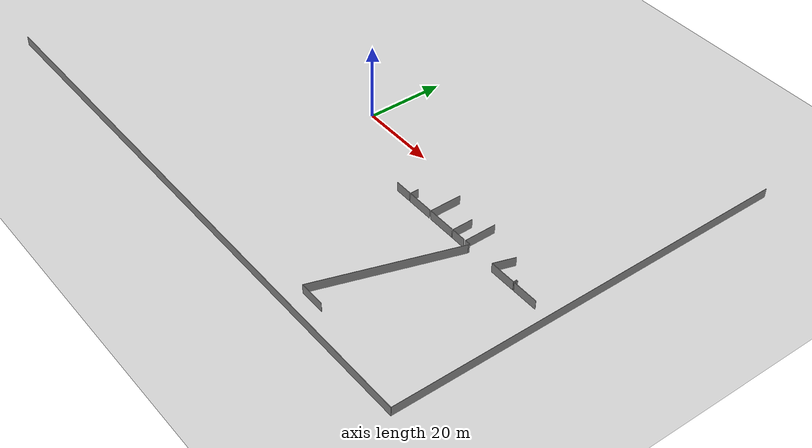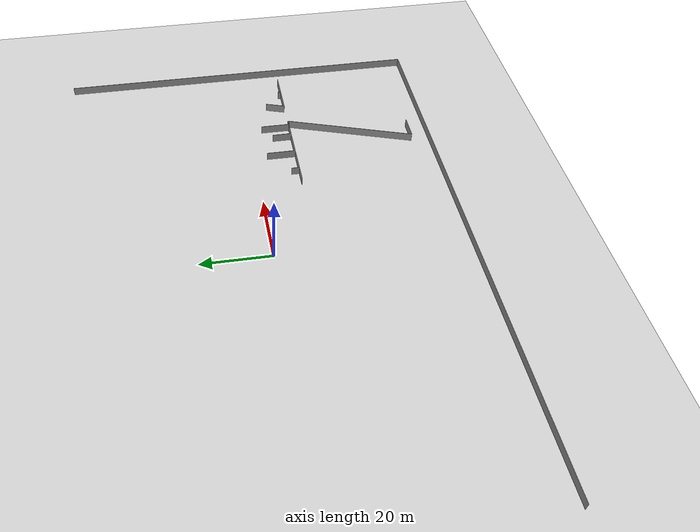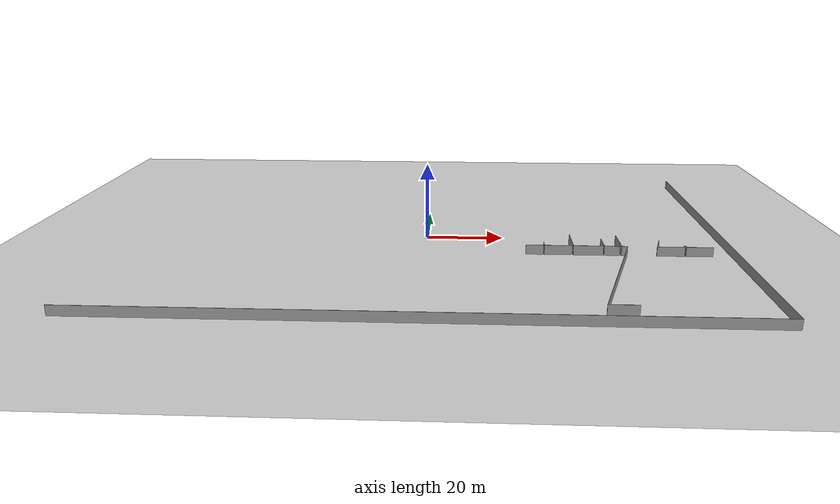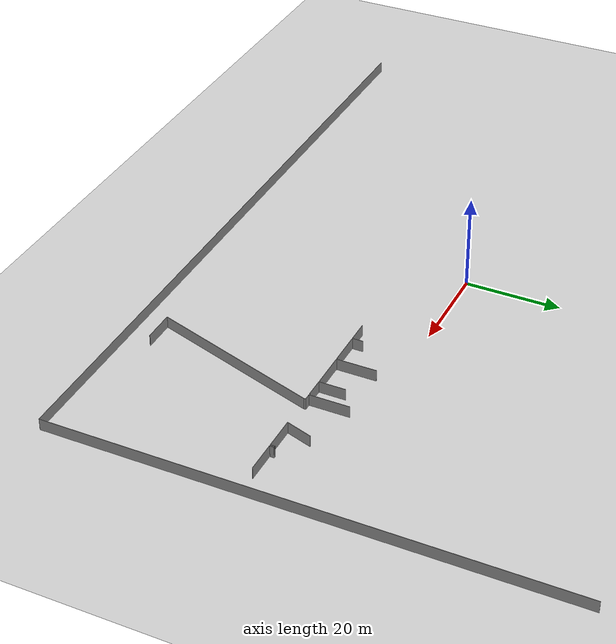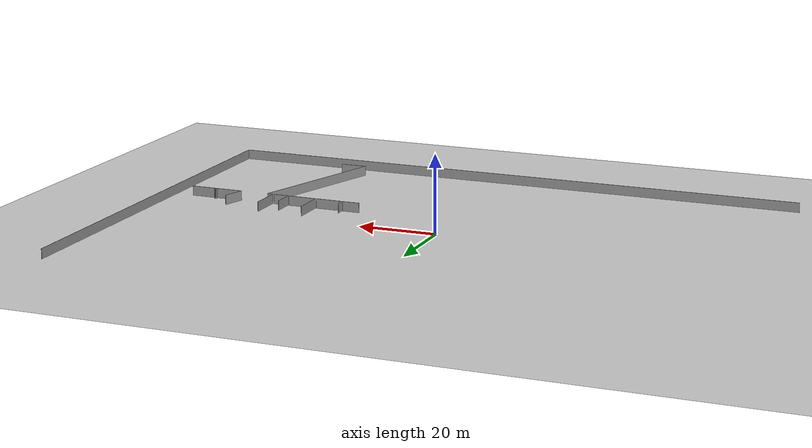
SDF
<sdf version="1.6">
 <world name="default">
  <model name="ground_plane">
   <static>1</static>
   <link name="link">
    <collision name="collision">
     <geometry><plane><normal>0 0 1</normal><size>100 100</size></plane></geometry>
     <surface><friction><ode><mu>100</mu><mu2>50</mu2></ode></friction></surface>
    </collision>
    <visual name="visual">
     <cast_shadows>0</cast_shadows>
     <geometry><plane><normal>0 0 1</normal><size>100 100</size></plane></geometry>
     <material>
      <script><uri>file://media/materials/scripts/gazebo.material</uri><name>Gazebo/Grey</name></script>
     </material>
    </visual>
   </link>
  </model>
  <model name="0510032217_A-40">
   <static>1</static>
   <link name="Wall_159">
    <collision name="Wall_159_Collision">
     <geometry><box><size>6.79943660542 0.1 2.5</size></box></geometry>
     <pose>3.39971830271 0 1.25 0 0 0</pose>
    </collision>
    <visual name="Wall_159_Visual">
     <pose>3.39971830271 0 1.25 0 0 0</pose>
     <geometry><box><size>6.79943660542 0.1 2.5</size></box></geometry>
     <material>
      <script><uri>file://media/materials/scripts/gazebo.material</uri><name>Gazebo/Grey</name></script>
      <ambient>1 1 1 1</ambient>
     </material>
    </visual>
    <pose>122.989353873 -100.872906304 0 0 0 3.14159265359</pose>
   </link>
   <link name="Wall_160">
    <collision name="Wall_160_Collision">
     <geometry><box><size>37.2187596907 0.1 2.5</size></box></geometry>
     <pose>18.6093798454 0 1.25 0 0 0</pose>
    </collision>
    <visual name="Wall_160_Visual">
     <pose>18.6093798454 0 1.25 0 0 0</pose>
     <geometry><box><size>37.2187596907 0.1 2.5</size></box></geometry>
     <material>
      <script><uri>file://media/materials/scripts/gazebo.material</uri><name>Gazebo/Grey</name></script>
      <ambient>1 1 1 1</ambient>
     </material>
    </visual>
    <pose>116.189917267 -100.872906304 0 0 0 1.26023367494</pose>
   </link>
   <link name="Wall_161">
    <collision name="Wall_161_Collision">
     <geometry><box><size>0.403004771089 0.1 2.5</size></box></geometry>
     <pose>0.201502385545 0 1.25 0 0 0</pose>
    </collision>
    <visual name="Wall_161_Visual">
     <pose>0.201502385545 0 1.25 0 0 0</pose>
     <geometry><box><size>0.403004771089 0.1 2.5</size></box></geometry>
     <material>
      <script><uri>file://media/materials/scripts/gazebo.material</uri><name>Gazebo/Grey</name></script>
      <ambient>1 1 1 1</ambient>
     </material>
    </visual>
    <pose>127.563762562 -65.4346259263 0 0 0 1.57079632679</pose>
   </link>
   <link name="Wall_162">
    <collision name="Wall_162_Collision">
     <geometry><box><size>1.39199066085 0.1 2.5</size></box></geometry>
     <pose>0.695995330423 0 1.25 0 0 0</pose>
    </collision>
    <visual name="Wall_162_Visual">
     <pose>0.695995330423 0 1.25 0 0 0</pose>
     <geometry><box><size>1.39199066085 0.1 2.5</size></box></geometry>
     <material>
      <script><uri>file://media/materials/scripts/gazebo.material</uri><name>Gazebo/Grey</name></script>
      <ambient>1 1 1 1</ambient>
     </material>
    </visual>
    <pose>127.563762562 -65.0316211552 0 0 0 3.14159265359</pose>
   </link>
   <link name="Wall_163">
    <collision name="Wall_163_Collision">
     <geometry><box><size>8.35854227997 0.1 2.5</size></box></geometry>
     <pose>4.17927113999 0 1.25 0 0 0</pose>
    </collision>
    <visual name="Wall_163_Visual">
     <pose>4.17927113999 0 1.25 0 0 0</pose>
     <geometry><box><size>8.35854227997 0.1 2.5</size></box></geometry>
     <material>
      <script><uri>file://media/materials/scripts/gazebo.material</uri><name>Gazebo/Grey</name></script>
      <ambient>1 1 1 1</ambient>
     </material>
    </visual>
    <pose>126.171771901 -65.0316211552 0 0 0 1.57079632679</pose>
   </link>
   <link name="Wall_237">
    <collision name="Wall_237_Collision">
     <geometry><box><size>6.9180793828 0.1 2.5</size></box></geometry>
     <pose>3.4590396914 0 1.25 0 0 0</pose>
    </collision>
    <visual name="Wall_237_Visual">
     <pose>3.4590396914 0 1.25 0 0 0</pose>
     <geometry><box><size>6.9180793828 0.1 2.5</size></box></geometry>
     <material>
      <script><uri>file://media/materials/scripts/gazebo.material</uri><name>Gazebo/Grey</name></script>
      <ambient>1 1 1 1</ambient>
     </material>
    </visual>
    <pose>141.936668866 -65.0411379555 0 0 0 3.14159265359</pose>
   </link>
   <link name="Wall_238">
    <collision name="Wall_238_Collision">
     <geometry><box><size>5.67876076288 0.1 2.5</size></box></geometry>
     <pose>2.83938038144 0 1.25 0 0 0</pose>
    </collision>
    <visual name="Wall_238_Visual">
     <pose>2.83938038144 0 1.25 0 0 0</pose>
     <geometry><box><size>5.67876076288 0.1 2.5</size></box></geometry>
     <material>
      <script><uri>file://media/materials/scripts/gazebo.material</uri><name>Gazebo/Grey</name></script>
      <ambient>1 1 1 1</ambient>
     </material>
    </visual>
    <pose>135.018589483 -65.0411379555 0 0 0 1.25897372236</pose>
   </link>
   <link name="Wall_245">
    <collision name="Wall_245_Collision">
     <geometry><box><size>0.956501877982 0.1 2.5</size></box></geometry>
     <pose>0.478250938991 0 1.25 0 0 0</pose>
    </collision>
    <visual name="Wall_245_Visual">
     <pose>0.478250938991 0 1.25 0 0 0</pose>
     <geometry><box><size>0.956501877982 0.1 2.5</size></box></geometry>
     <material>
      <script><uri>file://media/materials/scripts/gazebo.material</uri><name>Gazebo/Grey</name></script>
      <ambient>1 1 1 1</ambient>
     </material>
    </visual>
    <pose>141.936668866 -64.0846360776 0 0 0 -1.57079632679</pose>
   </link>
   <link name="Wall_246">
    <collision name="Wall_246_Collision">
     <geometry><box><size>6.68586945488 0.1 2.5</size></box></geometry>
     <pose>3.34293472744 0 1.25 0 0 0</pose>
    </collision>
    <visual name="Wall_246_Visual">
     <pose>3.34293472744 0 1.25 0 0 0</pose>
     <geometry><box><size>6.68586945488 0.1 2.5</size></box></geometry>
     <material>
      <script><uri>file://media/materials/scripts/gazebo.material</uri><name>Gazebo/Grey</name></script>
      <ambient>1 1 1 1</ambient>
     </material>
    </visual>
    <pose>148.957529692 -65.0396152675 0 0 0 3.14159265359</pose>
   </link>
   <link name="Wall_247">
    <collision name="Wall_247_Collision">
     <geometry><box><size>0.89521368389 0.1 2.5</size></box></geometry>
     <pose>0.447606841945 0 1.25 0 0 0</pose>
    </collision>
    <visual name="Wall_247_Visual">
     <pose>0.447606841945 0 1.25 0 0 0</pose>
     <geometry><box><size>0.89521368389 0.1 2.5</size></box></geometry>
     <material>
      <script><uri>file://media/materials/scripts/gazebo.material</uri><name>Gazebo/Grey</name></script>
      <ambient>1 1 1 1</ambient>
     </material>
    </visual>
    <pose>142.271660238 -65.0396152675 0 0 0 1.57079632679</pose>
   </link>
   <link name="Wall_582">
    <collision name="Wall_582_Collision">
     <geometry><box><size>6.97188102731 0.1 2.5</size></box></geometry>
     <pose>3.48594051365 0 1.25 0 0 0</pose>
    </collision>
    <visual name="Wall_582_Visual">
     <pose>3.48594051365 0 1.25 0 0 0</pose>
     <geometry><box><size>6.97188102731 0.1 2.5</size></box></geometry>
     <material>
      <script><uri>file://media/materials/scripts/gazebo.material</uri><name>Gazebo/Grey</name></script>
      <ambient>1 1 1 1</ambient>
     </material>
    </visual>
    <pose>113.858047406 -65.0431682063 0 0 0 3.14159265359</pose>
   </link>
   <link name="Wall_583">
    <collision name="Wall_583_Collision">
     <geometry><box><size>2.28504720333 0.1 2.5</size></box></geometry>
     <pose>1.14252360166 0 1.25 0 0 0</pose>
    </collision>
    <visual name="Wall_583_Visual">
     <pose>1.14252360166 0 1.25 0 0 0</pose>
     <geometry><box><size>2.28504720333 0.1 2.5</size></box></geometry>
     <material>
      <script><uri>file://media/materials/scripts/gazebo.material</uri><name>Gazebo/Grey</name></script>
      <ambient>1 1 1 1</ambient>
     </material>
    </visual>
    <pose>106.886166379 -65.0431682063 0 0 0 1.57079632679</pose>
   </link>
   <link name="Wall_588">
    <collision name="Wall_588_Collision">
     <geometry><box><size>4.43279870064 0.1 2.5</size></box></geometry>
     <pose>2.21639935032 0 1.25 0 0 0</pose>
    </collision>
    <visual name="Wall_588_Visual">
     <pose>2.21639935032 0 1.25 0 0 0</pose>
     <geometry><box><size>4.43279870064 0.1 2.5</size></box></geometry>
     <material>
      <script><uri>file://media/materials/scripts/gazebo.material</uri><name>Gazebo/Grey</name></script>
      <ambient>1 1 1 1</ambient>
     </material>
    </visual>
    <pose>106.638348899 -65.0412648462 0 0 0 3.14159265359</pose>
   </link>
   <link name="Wall_593">
    <collision name="Wall_593_Collision">
     <geometry><box><size>7.46827733225 0.1 2.5</size></box></geometry>
     <pose>3.73413866613 0 1.25 0 0 0</pose>
    </collision>
    <visual name="Wall_593_Visual">
     <pose>3.73413866613 0 1.25 0 0 0</pose>
     <geometry><box><size>7.46827733225 0.1 2.5</size></box></geometry>
     <material>
      <script><uri>file://media/materials/scripts/gazebo.material</uri><name>Gazebo/Grey</name></script>
      <ambient>1 1 1 1</ambient>
     </material>
    </visual>
    <pose>121.646850574 -65.0339051873 0 0 0 3.14159265359</pose>
   </link>
   <link name="Wall_594">
    <collision name="Wall_594_Collision">
     <geometry><box><size>8.37656075525 0.1 2.5</size></box></geometry>
     <pose>4.18828037763 0 1.25 0 0 0</pose>
    </collision>
    <visual name="Wall_594_Visual">
     <pose>4.18828037763 0 1.25 0 0 0</pose>
     <geometry><box><size>8.37656075525 0.1 2.5</size></box></geometry>
     <material>
      <script><uri>file://media/materials/scripts/gazebo.material</uri><name>Gazebo/Grey</name></script>
      <ambient>1 1 1 1</ambient>
     </material>
    </visual>
    <pose>114.178573241 -65.0339051873 0 0 0 1.57079632679</pose>
   </link>
   <link name="Wall_599">
    <collision name="Wall_599_Collision">
     <geometry><box><size>3.88539234595 0.1 2.5</size></box></geometry>
     <pose>1.94269617298 0 1.25 0 0 0</pose>
    </collision>
    <visual name="Wall_599_Visual">
     <pose>1.94269617298 0 1.25 0 0 0</pose>
     <geometry><box><size>3.88539234595 0.1 2.5</size></box></geometry>
     <material>
      <script><uri>file://media/materials/scripts/gazebo.material</uri><name>Gazebo/Grey</name></script>
      <ambient>1 1 1 1</ambient>
     </material>
    </visual>
    <pose>125.759377221 -65.0507816465 0 0 0 3.14159265359</pose>
   </link>
   <link name="Wall_600">
    <collision name="Wall_600_Collision">
     <geometry><box><size>5.5136534362 0.1 2.5</size></box></geometry>
     <pose>2.7568267181 0 1.25 0 0 0</pose>
    </collision>
    <visual name="Wall_600_Visual">
     <pose>2.7568267181 0 1.25 0 0 0</pose>
     <geometry><box><size>5.5136534362 0.1 2.5</size></box></geometry>
     <material>
      <script><uri>file://media/materials/scripts/gazebo.material</uri><name>Gazebo/Grey</name></script>
      <ambient>1 1 1 1</ambient>
     </material>
    </visual>
    <pose>121.873984875 -65.0507816465 0 0 0 1.57079632679</pose>
   </link>
   <link name="Wall_604">
    <collision name="Wall_604_Collision">
     <geometry><box><size>106.221348086 0.1 2.5</size></box></geometry>
     <pose>53.1106740432 0 1.25 0 0 0</pose>
    </collision>
    <visual name="Wall_604_Visual">
     <pose>53.1106740432 0 1.25 0 0 0</pose>
     <geometry><box><size>106.221348086 0.1 2.5</size></box></geometry>
     <material>
      <script><uri>file://media/materials/scripts/gazebo.material</uri><name>Gazebo/Grey</name></script>
      <ambient>1 1 1 1</ambient>
     </material>
    </visual>
    <pose>153.628375292 -106.221348086 0 0 0 1.57079632679</pose>
   </link>
   <link name="Wall_605">
    <collision name="Wall_605_Collision">
     <geometry><box><size>153.628375292 0.1 2.5</size></box></geometry>
     <pose>76.8141876459 0 1.25 0 0 0</pose>
    </collision>
    <visual name="Wall_605_Visual">
     <pose>76.8141876459 0 1.25 0 0 0</pose>
     <geometry><box><size>153.628375292 0.1 2.5</size></box></geometry>
     <material>
      <script><uri>file://media/materials/scripts/gazebo.material</uri><name>Gazebo/Grey</name></script>
      <ambient>1 1 1 1</ambient>
     </material>
    </visual>
    <pose>153.628375292 -106.221348086 0 0 0 3.14159265359</pose>
   </link>
   <pose>-76.8 53.1213480865 0 0 0 0</pose>
  </model>
 </world>
</sdf>
